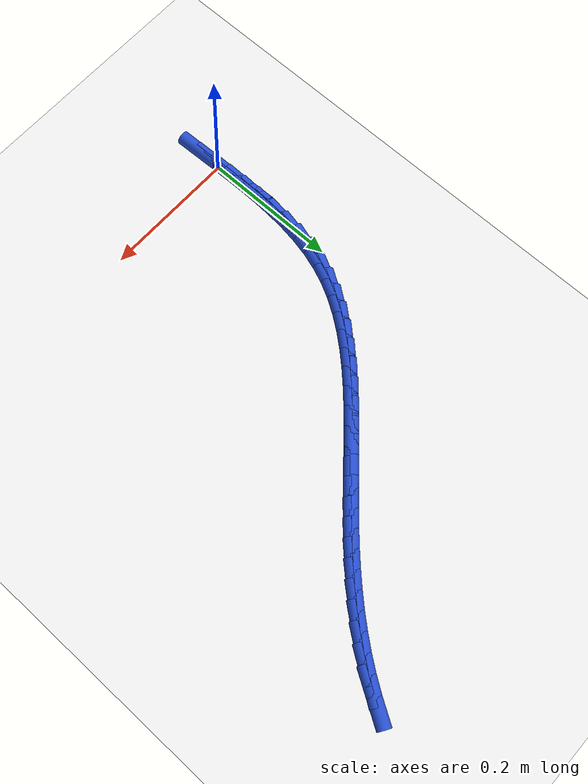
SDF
<sdf version="1.6">
 <world name="default">
  <model name="ground_plane">
   <static>1</static>
   <link name="link">
    <collision name="collision">
     <geometry><plane><normal>0 0 1</normal><size>100 100</size></plane></geometry>
     <surface><friction><ode><mu>100</mu><mu2>50</mu2></ode></friction></surface>
    </collision>
    <visual name="visual">
     <cast_shadows>0</cast_shadows>
     <geometry><plane><normal>0 0 1</normal><size>100 100</size></plane></geometry>
     <material>
      <script><uri>file://media/materials/scripts/gazebo.material</uri><name>Gazebo/WhiteGlow</name></script>
     </material>
    </visual>
   </link>
  </model>
  <model name="line">
   <link name="link_0">
    <pose>7.752045533271357e-18 -2.7755575615628914e-17 0.01 0 1.57 -1.5475771578016648</pose>
    <collision name="collision">
     <geometry><cylinder><radius>0.01</radius><length>0.08</length></cylinder></geometry>
    </collision>
    <visual name="visual">
     <material>
      <script><name>Gazebo/Blue</name><uri>file://media/materials/scripts/gazebo.material</uri></script>
     </material>
     <geometry><cylinder><radius>0.01</radius><length>0.08</length></cylinder></geometry>
    </visual>
   </link>
   <link name="link_1">
    <pose>-0.0006423266834701965 0.027658666295119556 0.01 0 1.57 -1.5633790420009965</pose>
    <collision name="collision">
     <geometry><cylinder><radius>0.01</radius><length>0.08</length></cylinder></geometry>
    </collision>
    <visual name="visual">
     <material>
      <script><name>Gazebo/Blue</name><uri>file://media/materials/scripts/gazebo.material</uri></script>
     </material>
     <geometry><cylinder><radius>0.01</radius><length>0.08</length></cylinder></geometry>
    </visual>
   </link>
   <link name="link_2">
    <pose>-0.0008471799076360735 0.05527651744973675 0.01 0 1.57 1.5530773026744242</pose>
    <collision name="collision">
     <geometry><cylinder><radius>0.01</radius><length>0.08</length></cylinder></geometry>
    </collision>
    <visual name="visual">
     <material>
      <script><name>Gazebo/Blue</name><uri>file://media/materials/scripts/gazebo.material</uri></script>
     </material>
     <geometry><cylinder><radius>0.01</radius><length>0.08</length></cylinder></geometry>
    </visual>
   </link>
   <link name="link_3">
    <pose>-0.0003608039724704128 0.08272300825601164 0.01 0 1.57 1.518114131427173</pose>
    <collision name="collision">
     <geometry><cylinder><radius>0.01</radius><length>0.08</length></cylinder></geometry>
    </collision>
    <visual name="visual">
     <material>
      <script><name>Gazebo/Blue</name><uri>file://media/materials/scripts/gazebo.material</uri></script>
     </material>
     <geometry><cylinder><radius>0.01</radius><length>0.08</length></cylinder></geometry>
    </visual>
   </link>
   <link name="link_4">
    <pose>0.0010705568220539968 0.10986759350610421 0.01 0 1.57 1.472651746313057</pose>
    <collision name="collision">
     <geometry><cylinder><radius>0.01</radius><length>0.08</length></cylinder></geometry>
    </collision>
    <visual name="visual">
     <material>
      <script><name>Gazebo/Blue</name><uri>file://media/materials/scripts/gazebo.material</uri></script>
     </material>
     <geometry><cylinder><radius>0.01</radius><length>0.08</length></cylinder></geometry>
    </visual>
   </link>
   <link name="link_5">
    <pose>0.003700658175964367 0.13657972799217455 0.01 0 1.57 1.415919242697305</pose>
    <collision name="collision">
     <geometry><cylinder><radius>0.01</radius><length>0.08</length></cylinder></geometry>
    </collision>
    <visual name="visual">
     <material>
      <script><name>Gazebo/Blue</name><uri>file://media/materials/scripts/gazebo.material</uri></script>
     </material>
     <geometry><cylinder><radius>0.01</radius><length>0.08</length></cylinder></geometry>
    </visual>
   </link>
   <link name="link_6">
    <pose>0.00778325578928791 0.1627288665063827 0.01 0 1.57 1.347189491061914</pose>
    <collision name="collision">
     <geometry><cylinder><radius>0.01</radius><length>0.08</length></cylinder></geometry>
    </collision>
    <visual name="visual">
     <material>
      <script><name>Gazebo/Blue</name><uri>file://media/materials/scripts/gazebo.material</uri></script>
     </material>
     <geometry><cylinder><radius>0.01</radius><length>0.08</length></cylinder></geometry>
    </visual>
   </link>
   <link name="link_7">
    <pose>0.013572105362051827 0.1881844638408887 0.01 0 1.57 1.266007420266653</pose>
    <collision name="collision">
     <geometry><cylinder><radius>0.01</radius><length>0.08</length></cylinder></geometry>
    </collision>
    <visual name="visual">
     <material>
      <script><name>Gazebo/Blue</name><uri>file://media/materials/scripts/gazebo.material</uri></script>
     </material>
     <geometry><cylinder><radius>0.01</radius><length>0.08</length></cylinder></geometry>
    </visual>
   </link>
   <link name="link_8">
    <pose>0.021320962594283347 0.21281597478785255 0.01 0 1.57 1.1732408211207972</pose>
    <collision name="collision">
     <geometry><cylinder><radius>0.01</radius><length>0.08</length></cylinder></geometry>
    </collision>
    <visual name="visual">
     <material>
      <script><name>Gazebo/Blue</name><uri>file://media/materials/scripts/gazebo.material</uri></script>
     </material>
     <geometry><cylinder><radius>0.01</radius><length>0.08</length></cylinder></geometry>
    </visual>
   </link>
   <link name="link_9">
    <pose>0.03126635858407445 0.23650029751691645 0.01 0 1.57 1.081027170066918</pose>
    <collision name="collision">
     <geometry><cylinder><radius>0.01</radius><length>0.08</length></cylinder></geometry>
    </collision>
    <visual name="visual">
     <material>
      <script><name>Gazebo/Blue</name><uri>file://media/materials/scripts/gazebo.material</uri></script>
     </material>
     <geometry><cylinder><radius>0.01</radius><length>0.08</length></cylinder></geometry>
    </visual>
   </link>
   <link name="link_10">
    <pose>0.04338220914261632 0.2592278158225471 0.01 0 1.57 0.9991547696026446</pose>
    <collision name="collision">
     <geometry><cylinder><radius>0.01</radius><length>0.08</length></cylinder></geometry>
    </collision>
    <visual name="visual">
     <material>
      <script><name>Gazebo/Blue</name><uri>file://media/materials/scripts/gazebo.material</uri></script>
     </material>
     <geometry><cylinder><radius>0.01</radius><length>0.08</length></cylinder></geometry>
    </visual>
   </link>
   <link name="link_11">
    <pose>0.05743774080938268 0.28107736718433307 0.01 0 1.57 0.9282244274906649</pose>
    <collision name="collision">
     <geometry><cylinder><radius>0.01</radius><length>0.08</length></cylinder></geometry>
    </collision>
    <visual name="visual">
     <material>
      <script><name>Gazebo/Blue</name><uri>file://media/materials/scripts/gazebo.material</uri></script>
     </material>
     <geometry><cylinder><radius>0.01</radius><length>0.08</length></cylinder></geometry>
    </visual>
   </link>
   <link name="link_12">
    <pose>0.07319676671816215 0.30213012841151066 0.01 0 1.57 0.8680244803851493</pose>
    <collision name="collision">
     <geometry><cylinder><radius>0.01</radius><length>0.08</length></cylinder></geometry>
    </collision>
    <visual name="visual">
     <material>
      <script><name>Gazebo/Blue</name><uri>file://media/materials/scripts/gazebo.material</uri></script>
     </material>
     <geometry><cylinder><radius>0.01</radius><length>0.08</length></cylinder></geometry>
    </visual>
   </link>
   <link name="link_13">
    <pose>0.09042310000274335 0.32246727631331634 0.01 0 1.57 0.8180189828831927</pose>
    <collision name="collision">
     <geometry><cylinder><radius>0.01</radius><length>0.08</length></cylinder></geometry>
    </collision>
    <visual name="visual">
     <material>
      <script><name>Gazebo/Blue</name><uri>file://media/materials/scripts/gazebo.material</uri></script>
     </material>
     <geometry><cylinder><radius>0.01</radius><length>0.08</length></cylinder></geometry>
    </visual>
   </link>
   <link name="link_14">
    <pose>0.1088805537969149 0.3421699876989864 0.01 0 1.57 0.7775506217509162</pose>
    <collision name="collision">
     <geometry><cylinder><radius>0.01</radius><length>0.08</length></cylinder></geometry>
    </collision>
    <visual name="visual">
     <material>
      <script><name>Gazebo/Blue</name><uri>file://media/materials/scripts/gazebo.material</uri></script>
     </material>
     <geometry><cylinder><radius>0.01</radius><length>0.08</length></cylinder></geometry>
    </visual>
   </link>
   <link name="link_15">
    <pose>0.12833294123446545 0.3613194393777572 0.01 0 1.57 0.7459785203252797</pose>
    <collision name="collision">
     <geometry><cylinder><radius>0.01</radius><length>0.08</length></cylinder></geometry>
    </collision>
    <visual name="visual">
     <material>
      <script><name>Gazebo/Blue</name><uri>file://media/materials/scripts/gazebo.material</uri></script>
     </material>
     <geometry><cylinder><radius>0.01</radius><length>0.08</length></cylinder></geometry>
    </visual>
   </link>
   <link name="link_16">
    <pose>0.14854407544918363 0.3799968081588652 0.01 0 1.57 0.7227630919921517</pose>
    <collision name="collision">
     <geometry><cylinder><radius>0.01</radius><length>0.08</length></cylinder></geometry>
    </collision>
    <visual name="visual">
     <material>
      <script><name>Gazebo/Blue</name><uri>file://media/materials/scripts/gazebo.material</uri></script>
     </material>
     <geometry><cylinder><radius>0.01</radius><length>0.08</length></cylinder></geometry>
    </visual>
   </link>
   <link name="link_17">
    <pose>0.16927776957485807 0.39828327085154674 0.01 0 1.57 0.7075154170517273</pose>
    <collision name="collision">
     <geometry><cylinder><radius>0.01</radius><length>0.08</length></cylinder></geometry>
    </collision>
    <visual name="visual">
     <material>
      <script><name>Gazebo/Blue</name><uri>file://media/materials/scripts/gazebo.material</uri></script>
     </material>
     <geometry><cylinder><radius>0.01</radius><length>0.08</length></cylinder></geometry>
    </visual>
   </link>
   <link name="link_18">
    <pose>0.1902978367452774 0.4162600042650382 0.01 0 1.57 0.7000264128743866</pose>
    <collision name="collision">
     <geometry><cylinder><radius>0.01</radius><length>0.08</length></cylinder></geometry>
    </collision>
    <visual name="visual">
     <material>
      <script><name>Gazebo/Blue</name><uri>file://media/materials/scripts/gazebo.material</uri></script>
     </material>
     <geometry><cylinder><radius>0.01</radius><length>0.08</length></cylinder></geometry>
    </visual>
   </link>
   <link name="link_19">
    <pose>0.21136809009423022 0.43400818520857576 0.01 0 1.57 0.7002868148669174</pose>
    <collision name="collision">
     <geometry><cylinder><radius>0.01</radius><length>0.08</length></cylinder></geometry>
    </collision>
    <visual name="visual">
     <material>
      <script><name>Gazebo/Blue</name><uri>file://media/materials/scripts/gazebo.material</uri></script>
     </material>
     <geometry><cylinder><radius>0.01</radius><length>0.08</length></cylinder></geometry>
    </visual>
   </link>
   <link name="link_20">
    <pose>0.23225234275550521 0.45160899049139586 0.01 0 1.57 0.708218803882424</pose>
    <collision name="collision">
     <geometry><cylinder><radius>0.01</radius><length>0.08</length></cylinder></geometry>
    </collision>
    <visual name="visual">
     <material>
      <script><name>Gazebo/Blue</name><uri>file://media/materials/scripts/gazebo.material</uri></script>
     </material>
     <geometry><cylinder><radius>0.01</radius><length>0.08</length></cylinder></geometry>
    </visual>
   </link>
   <link name="link_21">
    <pose>0.2527290090455688 0.4691459502157629 0.01 0 1.57 0.7216131995806573</pose>
    <collision name="collision">
     <geometry><cylinder><radius>0.01</radius><length>0.08</length></cylinder></geometry>
    </collision>
    <visual name="visual">
     <material>
      <script><name>Gazebo/Blue</name><uri>file://media/materials/scripts/gazebo.material</uri></script>
     </material>
     <geometry><cylinder><radius>0.01</radius><length>0.08</length></cylinder></geometry>
    </visual>
   </link>
   <link name="link_22">
    <pose>0.27270494228408215 0.4867232951776731 0.01 0 1.57 0.739277491214392</pose>
    <collision name="collision">
     <geometry><cylinder><radius>0.01</radius><length>0.08</length></cylinder></geometry>
    </collision>
    <visual name="visual">
     <material>
      <script><name>Gazebo/Blue</name><uri>file://media/materials/scripts/gazebo.material</uri></script>
     </material>
     <geometry><cylinder><radius>0.01</radius><length>0.08</length></cylinder></geometry>
    </visual>
   </link>
   <link name="link_23">
    <pose>0.29215370684742287 0.5044560080874104 0.01 0 1.57 0.7612131552611355</pose>
    <collision name="collision">
     <geometry><cylinder><radius>0.01</radius><length>0.08</length></cylinder></geometry>
    </collision>
    <visual name="visual">
     <material>
      <script><name>Gazebo/Blue</name><uri>file://media/materials/scripts/gazebo.material</uri></script>
     </material>
     <geometry><cylinder><radius>0.01</radius><length>0.08</length></cylinder></geometry>
    </visual>
   </link>
   <link name="link_24">
    <pose>0.3110494359465746 0.5224591633351279 0.01 0 1.57 0.7873555005937828</pose>
    <collision name="collision">
     <geometry><cylinder><radius>0.01</radius><length>0.08</length></cylinder></geometry>
    </collision>
    <visual name="visual">
     <material>
      <script><name>Gazebo/Blue</name><uri>file://media/materials/scripts/gazebo.material</uri></script>
     </material>
     <geometry><cylinder><radius>0.01</radius><length>0.08</length></cylinder></geometry>
    </visual>
   </link>
   <link name="link_25">
    <pose>0.3293662627925213 0.5408478353109788 0.01 0 1.57 0.8175499981400233</pose>
    <collision name="collision">
     <geometry><cylinder><radius>0.01</radius><length>0.08</length></cylinder></geometry>
    </collision>
    <visual name="visual">
     <material>
      <script><name>Gazebo/Blue</name><uri>file://media/materials/scripts/gazebo.material</uri></script>
     </material>
     <geometry><cylinder><radius>0.01</radius><length>0.08</length></cylinder></geometry>
    </visual>
   </link>
   <link name="link_26">
    <pose>0.34707832059624644 0.5597370984051162 0.01 0 1.57 0.851542264850933</pose>
    <collision name="collision">
     <geometry><cylinder><radius>0.01</radius><length>0.08</length></cylinder></geometry>
    </collision>
    <visual name="visual">
     <material>
      <script><name>Gazebo/Blue</name><uri>file://media/materials/scripts/gazebo.material</uri></script>
     </material>
     <geometry><cylinder><radius>0.01</radius><length>0.08</length></cylinder></geometry>
    </visual>
   </link>
   <link name="link_27">
    <pose>0.36415974256873374 0.5792420270076929 0.01 0 1.57 0.8889729479813079</pose>
    <collision name="collision">
     <geometry><cylinder><radius>0.01</radius><length>0.08</length></cylinder></geometry>
    </collision>
    <visual name="visual">
     <material>
      <script><name>Gazebo/Blue</name><uri>file://media/materials/scripts/gazebo.material</uri></script>
     </material>
     <geometry><cylinder><radius>0.01</radius><length>0.08</length></cylinder></geometry>
    </visual>
   </link>
   <link name="link_28">
    <pose>0.3805846619209672 0.5994776955088623 0.01 0 1.57 0.9293799062217508</pose>
    <collision name="collision">
     <geometry><cylinder><radius>0.01</radius><length>0.08</length></cylinder></geometry>
    </collision>
    <visual name="visual">
     <material>
      <script><name>Gazebo/Blue</name><uri>file://media/materials/scripts/gazebo.material</uri></script>
     </material>
     <geometry><cylinder><radius>0.01</radius><length>0.08</length></cylinder></geometry>
    </visual>
   </link>
   <link name="link_29">
    <pose>0.39632721186393033 0.6205591782987772 0.01 0 1.57 0.9722094681198448</pose>
    <collision name="collision">
     <geometry><cylinder><radius>0.01</radius><length>0.08</length></cylinder></geometry>
    </collision>
    <visual name="visual">
     <material>
      <script><name>Gazebo/Blue</name><uri>file://media/materials/scripts/gazebo.material</uri></script>
     </material>
     <geometry><cylinder><radius>0.01</radius><length>0.08</length></cylinder></geometry>
    </visual>
   </link>
   <link name="link_30">
    <pose>0.4113615256086067 0.6426015497675905 0.01 0 1.57 1.0168372478420402</pose>
    <collision name="collision">
     <geometry><cylinder><radius>0.01</radius><length>0.08</length></cylinder></geometry>
    </collision>
    <visual name="visual">
     <material>
      <script><name>Gazebo/Blue</name><uri>file://media/materials/scripts/gazebo.material</uri></script>
     </material>
     <geometry><cylinder><radius>0.01</radius><length>0.08</length></cylinder></geometry>
    </visual>
   </link>
   <link name="link_279">
    <pose>0.0008886453910640784 -0.027579612374682004 0.01 0 1.57 -1.5385863725677213</pose>
    <collision name="collision">
     <geometry><cylinder><radius>0.01</radius><length>0.08</length></cylinder></geometry>
    </collision>
    <visual name="visual">
     <material>
      <script><name>Gazebo/Blue</name><uri>file://media/materials/scripts/gazebo.material</uri></script>
     </material>
     <geometry><cylinder><radius>0.01</radius><length>0.08</length></cylinder></geometry>
    </visual>
   </link>
   <link name="link_280">
    <pose>7.047314121155779e-18 2.0816681711721685e-17 0.01 0 1.57 -1.5453249887285756</pose>
    <collision name="collision">
     <geometry><cylinder><radius>0.01</radius><length>0.08</length></cylinder></geometry>
    </collision>
    <visual name="visual">
     <material>
      <script><name>Gazebo/Blue</name><uri>file://media/materials/scripts/gazebo.material</uri></script>
     </material>
     <geometry><cylinder><radius>0.01</radius><length>0.08</length></cylinder></geometry>
    </visual>
   </link>
   <link name="link_281">
    <pose>-0.00070492763178695 0.027669342442019653 0.01 0 1.57 -1.5475791250589122</pose>
    <collision name="collision">
     <geometry><cylinder><radius>0.01</radius><length>0.08</length></cylinder></geometry>
    </collision>
    <visual name="visual">
     <material>
      <script><name>Gazebo/Blue</name><uri>file://media/materials/scripts/gazebo.material</uri></script>
     </material>
     <geometry><cylinder><radius>0.01</radius><length>0.08</length></cylinder></geometry>
    </visual>
   </link>
   <link name="link_282">
    <pose>-0.0013479874941701095 0.05536192662493768 0.01 0 1.57 -1.5464524991232949</pose>
    <collision name="collision">
     <geometry><cylinder><radius>0.01</radius><length>0.08</length></cylinder></geometry>
    </collision>
    <visual name="visual">
     <material>
      <script><name>Gazebo/Blue</name><uri>file://media/materials/scripts/gazebo.material</uri></script>
     </material>
     <geometry><cylinder><radius>0.01</radius><length>0.08</length></cylinder></geometry>
    </visual>
   </link>
  </model>
 </world>
</sdf>
